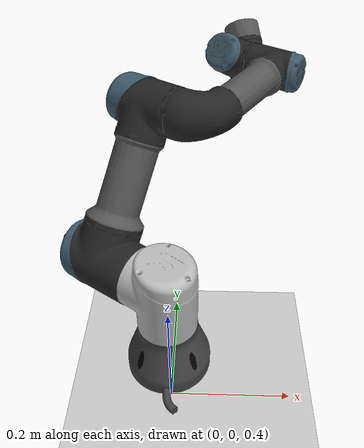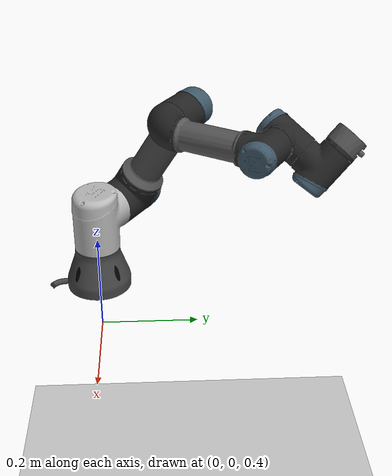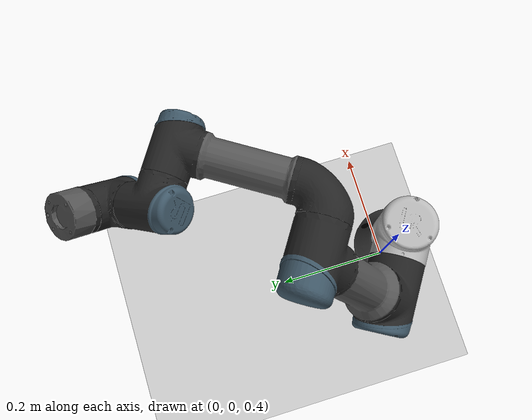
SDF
<sdf version='1.9'>
  <world name='empty'>
    <physics name='1ms' type='ignored'>
      <max_step_size>0.001</max_step_size>
      <real_time_factor>1</real_time_factor>
      <real_time_update_rate>1000</real_time_update_rate>
    </physics>
    <plugin name='gz::sim::systems::Physics' filename='ignition-gazebo-physics-system'/>
    <plugin name='gz::sim::systems::UserCommands' filename='ignition-gazebo-user-commands-system'/>
    <plugin name='gz::sim::systems::SceneBroadcaster' filename='ignition-gazebo-scene-broadcaster-system'/>
    <plugin name='gz::sim::systems::Contact' filename='ignition-gazebo-contact-system'/>
    <gravity>0 0 -9.8</gravity>
    <magnetic_field>6e-06 2.3e-05 -4.2e-05</magnetic_field>
    <atmosphere type='adiabatic'/>
    <scene>
      <ambient>0.4 0.4 0.4 1</ambient>
      <background>0.7 0.7 0.7 1</background>
      <shadows>true</shadows>
    </scene>
    <model name='ground_plane'>
      <static>true</static>
      <link name='link'>
        <collision name='collision'>
          <geometry>
            <plane>
              <normal>0 0 1</normal>
              <size>100 100</size>
            </plane>
          </geometry>
          <surface>
            <friction>
              <ode/>
            </friction>
            <bounce/>
            <contact/>
          </surface>
        </collision>
        <visual name='visual'>
          <geometry>
            <plane>
              <normal>0 0 1</normal>
              <size>100 100</size>
            </plane>
          </geometry>
          <material>
            <ambient>0.8 0.8 0.8 1</ambient>
            <diffuse>0.8 0.8 0.8 1</diffuse>
            <specular>0.8 0.8 0.8 1</specular>
          </material>
        </visual>
        <pose>0 0 0 0 -0 0</pose>
        <inertial>
          <pose>0 0 0 0 -0 0</pose>
          <mass>1</mass>
          <inertia>
            <ixx>1</ixx>
            <ixy>0</ixy>
            <ixz>0</ixz>
            <iyy>1</iyy>
            <iyz>0</iyz>
            <izz>1</izz>
          </inertia>
        </inertial>
        <enable_wind>false</enable_wind>
      </link>
      <pose>0 0 0 0 -0 0</pose>
      <self_collide>false</self_collide>
    </model>
    <model name='ur_0'>
      <joint name='base_joint' type='fixed'>
        <pose>0 0 0 0 -0 0</pose>
        <parent>world</parent>
        <child>base_link</child>
      </joint>
      <link name='base_link'>
        <pose>0 0 0.5 0 -0 0</pose>
        <inertial>
          <pose>0 0 0 0 -0 0</pose>
          <mass>2</mass>
          <inertia>
            <ixx>0.00305317</ixx>
            <ixy>0</ixy>
            <ixz>0</ixz>
            <iyy>0.00305317</iyy>
            <iyz>0</iyz>
            <izz>0.0056249999999999998</izz>
          </inertia>
        </inertial>
        <collision name='base_link_inertia_collision'>
          <pose>0 0 0 0 0 -2.449293598294706e-16</pose>
          <geometry>
            <mesh>
              <scale>1 1 1</scale>
              <uri>file:///home/alex/tese_ws/install/ur_description/share/ur_description/meshes/ur3/collision/base.stl</uri>
            </mesh>
          </geometry>
        </collision>
        <visual name='base_link_inertia_visual'>
          <pose>0 0 0 0 0 -2.449293598294706e-16</pose>
          <geometry>
            <mesh>
              <scale>1 1 1</scale>
              <uri>file:///home/alex/tese_ws/install/ur_description/share/ur_description/meshes/ur3/visual/base.dae</uri>
            </mesh>
          </geometry>
        </visual>
        <enable_wind>false</enable_wind>
      </link>
      <joint name='shoulder_pan_joint' type='revolute'>
        <pose>0 0 0 0 -0 0</pose>
        <parent>base_link</parent>
        <child>shoulder_link</child>
        <axis>
          <xyz>0 0 1</xyz>
          <limit>
            <lower>-6.2831900000000003</lower>
            <upper>6.2831900000000003</upper>
            <effort>56</effort>
            <velocity>3.1415899999999999</velocity>
            <stiffness>100000000</stiffness>
            <dissipation>1</dissipation>
          </limit>
          <dynamics>
            <spring_reference>0</spring_reference>
            <spring_stiffness>0</spring_stiffness>
            <damping>0</damping>
            <friction>0</friction>
          </dynamics>
        </axis>
      </joint>
      <link name='shoulder_link'>
        <pose>0 0 0.6519 0 -0 -2.14159</pose>
        <inertial>
          <pose>0 0 -0.02 0 -0 0</pose>
          <mass>2</mass>
          <inertia>
            <ixx>0.0080931700000000002</ixx>
            <ixy>0</ixy>
            <ixz>0</ixz>
            <iyy>0.0080931700000000002</iyy>
            <iyz>0</iyz>
            <izz>0.0056249999999999998</izz>
          </inertia>
        </inertial>
        <collision name='shoulder_link_collision'>
          <pose>0 0 0 0 0 3.141592653589793</pose>
          <geometry>
            <mesh>
              <scale>1 1 1</scale>
              <uri>file:///home/alex/tese_ws/install/ur_description/share/ur_description/meshes/ur3/collision/shoulder.stl</uri>
            </mesh>
          </geometry>
        </collision>
        <visual name='shoulder_link_visual'>
          <pose>0 0 0 0 0 3.141592653589793</pose>
          <geometry>
            <mesh>
              <scale>1 1 1</scale>
              <uri>file:///home/alex/tese_ws/install/ur_description/share/ur_description/meshes/ur3/visual/shoulder.dae</uri>
            </mesh>
          </geometry>
        </visual>
        <enable_wind>false</enable_wind>
      </link>
      <joint name='shoulder_lift_joint' type='revolute'>
        <pose>-0 0 -0 0 -0 0</pose>
        <parent>shoulder_link</parent>
        <child>upper_arm_link</child>
        <axis>
          <xyz>0 0 1</xyz>
          <limit>
            <lower>-6.2831900000000003</lower>
            <upper>6.2831900000000003</upper>
            <effort>56</effort>
            <velocity>3.1415899999999999</velocity>
            <stiffness>100000000</stiffness>
            <dissipation>1</dissipation>
          </limit>
          <dynamics>
            <spring_reference>0</spring_reference>
            <spring_stiffness>0</spring_stiffness>
            <damping>0</damping>
            <friction>0</friction>
          </dynamics>
        </axis>
      </joint>
      <link name='upper_arm_link'>
        <pose>0 0 0.6519 1.5708 1 -2.14159</pose>
        <inertial>
          <pose>-0.11365 0 0.1157 0 1.5708 0</pose>
          <mass>3.4199999999999999</mass>
          <inertia>
            <ixx>0.021728500000000001</ixx>
            <ixy>0</ixy>
            <ixz>0</ixz>
            <iyy>0.021728500000000001</iyy>
            <iyz>0</iyz>
            <izz>0.0096187500000000006</izz>
          </inertia>
        </inertial>
        <collision name='upper_arm_link_collision'>
          <pose>0 0 0.1198 1.570796326794896 0 -1.570796326794896</pose>
          <geometry>
            <mesh>
              <scale>1 1 1</scale>
              <uri>file:///home/alex/tese_ws/install/ur_description/share/ur_description/meshes/ur3/collision/upperarm.stl</uri>
            </mesh>
          </geometry>
        </collision>
        <visual name='upper_arm_link_visual'>
          <pose>0 0 0.1198 1.570796326794896 0 -1.570796326794896</pose>
          <geometry>
            <mesh>
              <scale>1 1 1</scale>
              <uri>file:///home/alex/tese_ws/install/ur_description/share/ur_description/meshes/ur3/visual/upperarm.dae</uri>
            </mesh>
          </geometry>
        </visual>
        <enable_wind>false</enable_wind>
      </link>
      <joint name='elbow_joint' type='revolute'>
        <pose>-0 0 -0 0 -0 0</pose>
        <parent>upper_arm_link</parent>
        <child>forearm_link</child>
        <axis>
          <xyz>0 0 1</xyz>
          <limit>
            <lower>-3.1415899999999999</lower>
            <upper>3.1415899999999999</upper>
            <effort>28</effort>
            <velocity>3.1415899999999999</velocity>
            <stiffness>100000000</stiffness>
            <dissipation>1</dissipation>
          </limit>
          <dynamics>
            <spring_reference>0</spring_reference>
            <spring_stiffness>0</spring_stiffness>
            <damping>0</damping>
            <friction>0</friction>
          </dynamics>
        </axis>
      </joint>
      <link name='forearm_link'>
        <pose>0.071128 0.110775 0.856924 1.5708 1e-06 -2.14159</pose>
        <inertial>
          <pose>-0.16325 0 0.0238 0 1.5708 0</pose>
          <mass>1.26</mass>
          <inertia>
            <ixx>0.0065468100000000001</ixx>
            <ixy>0</ixy>
            <ixz>0</ixz>
            <iyy>0.0065468100000000001</iyy>
            <iyz>0</iyz>
            <izz>0.00354375</izz>
          </inertia>
        </inertial>
        <collision name='forearm_link_collision'>
          <pose>0 0 0.0275 1.570796326794896 0 -1.570796326794896</pose>
          <geometry>
            <mesh>
              <scale>1 1 1</scale>
              <uri>file:///home/alex/tese_ws/install/ur_description/share/ur_description/meshes/ur3/collision/forearm.stl</uri>
            </mesh>
          </geometry>
        </collision>
        <visual name='forearm_link_visual'>
          <pose>0 0 0.0275 1.570796326794896 0 -1.570796326794896</pose>
          <geometry>
            <mesh>
              <scale>1 1 1</scale>
              <uri>file:///home/alex/tese_ws/install/ur_description/share/ur_description/meshes/ur3/visual/forearm.dae</uri>
            </mesh>
          </geometry>
        </visual>
        <enable_wind>false</enable_wind>
      </link>
      <joint name='wrist_1_joint' type='revolute'>
        <pose>-0 0 0 0 -0 0</pose>
        <parent>forearm_link</parent>
        <child>wrist_1_link</child>
        <axis>
          <xyz>0 0 1</xyz>
          <limit>
            <lower>-6.2831900000000003</lower>
            <upper>6.2831900000000003</upper>
            <effort>12</effort>
            <velocity>6.2831900000000003</velocity>
            <stiffness>100000000</stiffness>
            <dissipation>1</dissipation>
          </limit>
          <dynamics>
            <spring_reference>0</spring_reference>
            <spring_stiffness>0</spring_stiffness>
            <damping>0</damping>
            <friction>0</friction>
          </dynamics>
        </axis>
      </joint>
      <link name='wrist_1_link'>
        <pose>0.091808 0.350922 0.856925 1.5708 1 -2.14159</pose>
        <inertial>
          <pose>0 -0.01 0 0 -0 0</pose>
          <mass>0.80000000000000004</mass>
          <inertia>
            <ixx>0.00161064</ixx>
            <ixy>0</ixy>
            <ixz>0</ixz>
            <iyy>0.00161064</iyy>
            <iyz>0</iyz>
            <izz>0.0022499999999999998</izz>
          </inertia>
        </inertial>
        <collision name='wrist_1_link_collision'>
          <pose>0 0 -0.08500000000000001 1.570796326794896 0 0</pose>
          <geometry>
            <mesh>
              <scale>1 1 1</scale>
              <uri>file:///home/alex/tese_ws/install/ur_description/share/ur_description/meshes/ur3/collision/wrist1.stl</uri>
            </mesh>
          </geometry>
        </collision>
        <visual name='wrist_1_link_visual'>
          <pose>0 0 -0.08500000000000001 1.570796326794896 0 0</pose>
          <geometry>
            <mesh>
              <scale>1 1 1</scale>
              <uri>file:///home/alex/tese_ws/install/ur_description/share/ur_description/meshes/ur3/visual/wrist1.dae</uri>
            </mesh>
          </geometry>
        </visual>
        <enable_wind>false</enable_wind>
      </link>
      <joint name='wrist_2_joint' type='revolute'>
        <pose>0 0 0 0 0 -0</pose>
        <parent>wrist_1_link</parent>
        <child>wrist_2_link</child>
        <axis>
          <xyz>0 0 1</xyz>
          <limit>
            <lower>-6.2831900000000003</lower>
            <upper>6.2831900000000003</upper>
            <effort>12</effort>
            <velocity>6.2831900000000003</velocity>
            <stiffness>100000000</stiffness>
            <dissipation>1</dissipation>
          </limit>
          <dynamics>
            <spring_reference>0</spring_reference>
            <spring_stiffness>0</spring_stiffness>
            <damping>0</damping>
            <friction>0</friction>
          </dynamics>
        </axis>
      </joint>
      <link name='wrist_2_link'>
        <pose>0.130613 0.411356 0.81081 2.2226 0.471978 2.90473</pose>
        <inertial>
          <pose>0 0.01 0 0 -0 0</pose>
          <mass>0.80000000000000004</mass>
          <inertia>
            <ixx>0.0015721699999999999</ixx>
            <ixy>0</ixy>
            <ixz>0</ixz>
            <iyy>0.0015721699999999999</iyy>
            <iyz>0</iyz>
            <izz>0.0022499999999999998</izz>
          </inertia>
        </inertial>
        <collision name='wrist_2_link_collision'>
          <pose>0 0 -0.083 0 0 0</pose>
          <geometry>
            <mesh>
              <scale>1 1 1</scale>
              <uri>file:///home/alex/tese_ws/install/ur_description/share/ur_description/meshes/ur3/collision/wrist2.stl</uri>
            </mesh>
          </geometry>
        </collision>
        <visual name='wrist_2_link_visual'>
          <pose>0 0 -0.083 0 0 0</pose>
          <geometry>
            <mesh>
              <scale>1 1 1</scale>
              <uri>file:///home/alex/tese_ws/install/ur_description/share/ur_description/meshes/ur3/visual/wrist2.dae</uri>
            </mesh>
          </geometry>
        </visual>
        <enable_wind>false</enable_wind>
      </link>
      <joint name='wrist_3_joint' type='revolute'>
        <pose>0 0 -0 0 -0 0</pose>
        <parent>wrist_2_link</parent>
        <child>wrist_3_link</child>
        <axis>
          <xyz>0 0 1</xyz>
          <limit>
            <lower>-10000000000000000</lower>
            <upper>10000000000000000</upper>
            <effort>12</effort>
            <velocity>6.2831900000000003</velocity>
            <stiffness>100000000</stiffness>
            <dissipation>1</dissipation>
          </limit>
          <dynamics>
            <spring_reference>0</spring_reference>
            <spring_stiffness>0</spring_stiffness>
            <damping>0</damping>
            <friction>0</friction>
          </dynamics>
        </axis>
      </joint>
      <link name='wrist_3_link'>
        <pose>0.113495 0.466597 0.868801 0.651807 0.471978 2.90473</pose>
        <inertial>
          <pose>0 0 -0.02 0 -0 0</pose>
          <mass>0.34999999999999998</mass>
          <inertia>
            <ixx>0.000136267</ixx>
            <ixy>0</ixy>
            <ixz>0</ixz>
            <iyy>0.000136267</iyy>
            <iyz>0</iyz>
            <izz>0.00017919999999999999</izz>
          </inertia>
        </inertial>
        <collision name='wrist_3_link_collision'>
          <pose>0 -0.00255 -0.082 1.570796326794896 0 0</pose>
          <geometry>
            <mesh>
              <scale>1 1 1</scale>
              <uri>file:///home/alex/tese_ws/install/ur_description/share/ur_description/meshes/ur3/collision/wrist3.stl</uri>
            </mesh>
          </geometry>
        </collision>
        <visual name='wrist_3_link_visual'>
          <pose>0 -0.00255 -0.082 1.570796326794896 0 0</pose>
          <geometry>
            <mesh>
              <scale>1 1 1</scale>
              <uri>file:///home/alex/tese_ws/install/ur_description/share/ur_description/meshes/ur3/visual/wrist3.dae</uri>
            </mesh>
          </geometry>
        </visual>
        <enable_wind>false</enable_wind>
      </link>
      <plugin name='ign_ros2_control::IgnitionROS2ControlPlugin' filename='libign_ros2_control-system.so'>
        <parameters>/home/alex/tese_ws/install/sim/share/sim/config/ur3_controllers.yaml</parameters>
        <controller_manager_node_name>controller_manager</controller_manager_node_name>
      </plugin>
      <frame name='base_link-base_fixed_joint' attached_to='base_link'>
        <pose>0 0 0 0 -0 3.14159</pose>
      </frame>
      <frame name='base' attached_to='base_link-base_fixed_joint'/>
      <frame name='base_link-base_link_inertia' attached_to='base_link'>
        <pose>0 0 0 0 -0 3.14159</pose>
      </frame>
      <frame name='base_link_inertia' attached_to='base_link-base_link_inertia'/>
      <frame name='flange-tool0' attached_to='flange'>
        <pose>0 0 0 1.5708 -0 1.5708</pose>
      </frame>
      <frame name='tool0' attached_to='flange-tool0'/>
      <frame name='wrist_3-flange' attached_to='wrist_3_link'>
        <pose>0 0 0 -1.5708 -1.5708 0</pose>
      </frame>
      <frame name='flange' attached_to='wrist_3-flange'/>
      <frame name='wrist_3_link-ft_frame' attached_to='wrist_3_link'>
        <pose>0 0 0 3.14159 -0 0</pose>
      </frame>
      <frame name='ft_frame' attached_to='wrist_3_link-ft_frame'/>
      <pose>0 0 0 0 -0 0</pose>
      <static>false</static>
      <self_collide>false</self_collide>
    </model>
    <light name='sun' type='directional'>
      <pose>0 0 10 0 -0 0</pose>
      <cast_shadows>true</cast_shadows>
      <intensity>1</intensity>
      <direction>-0.5 0.1 -0.9</direction>
      <diffuse>0.8 0.8 0.8 1</diffuse>
      <specular>0.2 0.2 0.2 1</specular>
      <attenuation>
        <range>1000</range>
        <linear>0.01</linear>
        <constant>0.90000000000000002</constant>
        <quadratic>0.001</quadratic>
      </attenuation>
      <spot>
        <inner_angle>0</inner_angle>
        <outer_angle>0</outer_angle>
        <falloff>0</falloff>
      </spot>
    </light>
  </world>
</sdf>
